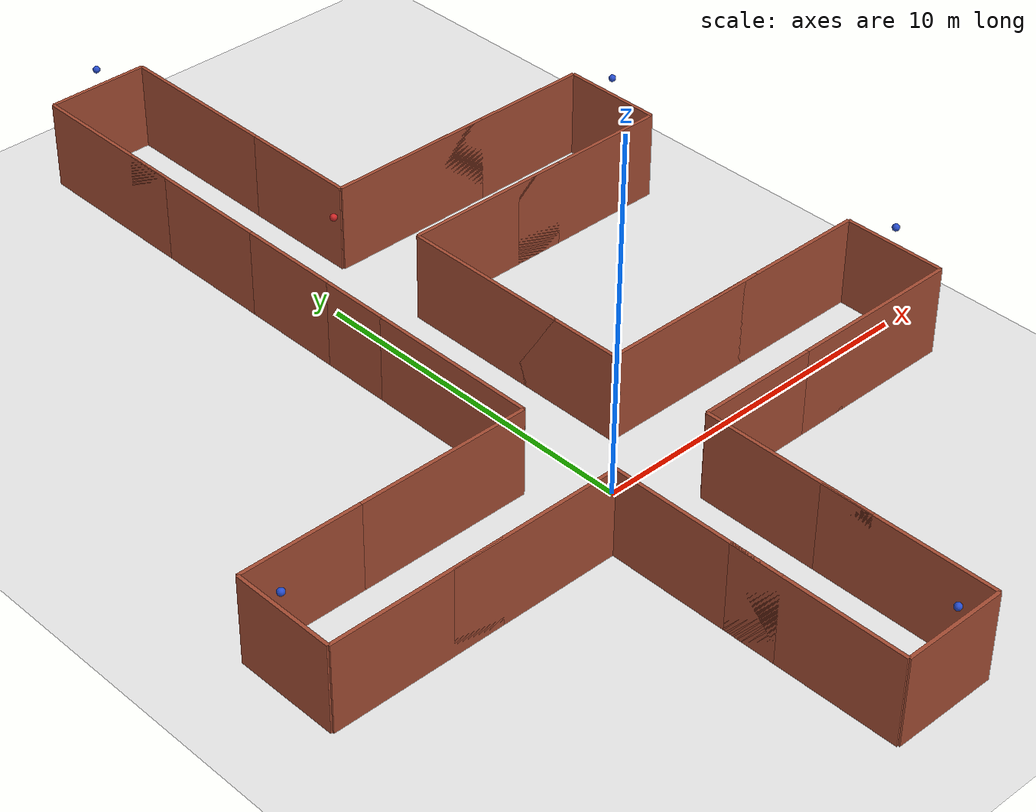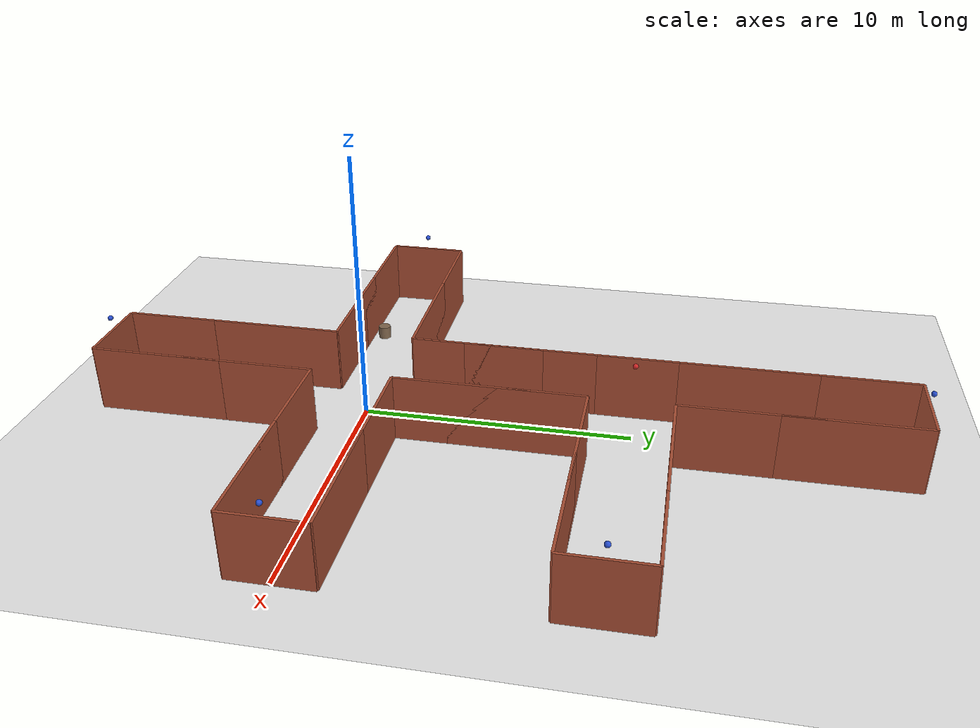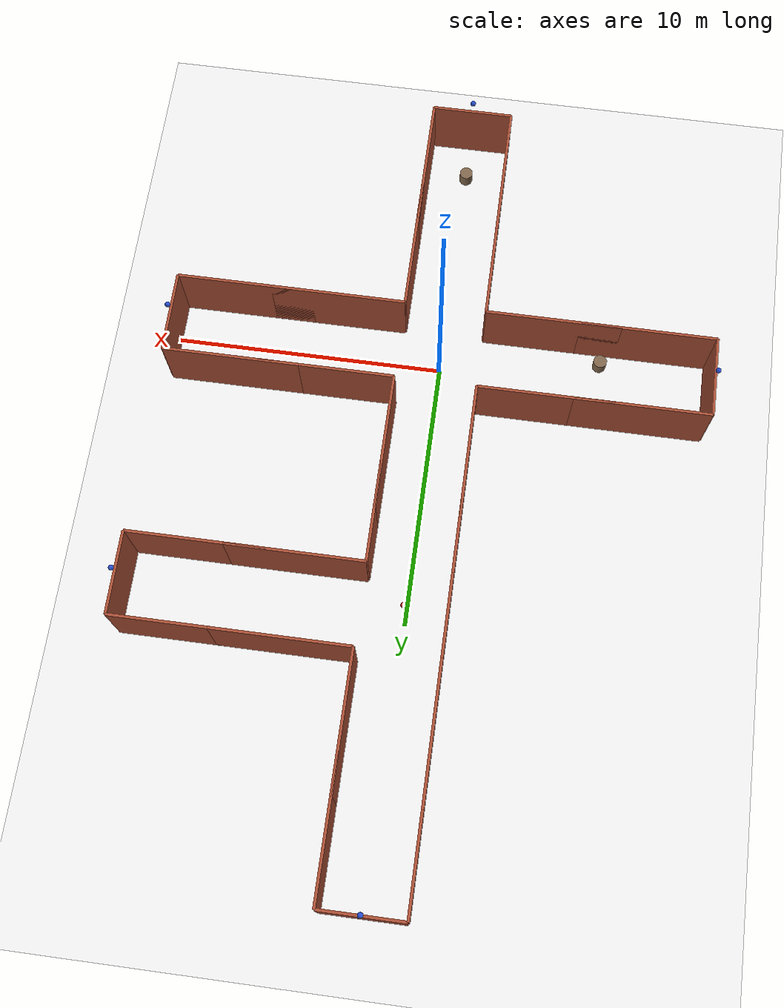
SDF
<?xml version="1.0" encoding="utf-8"?>

<sdf version="1.6">
    <world name="default">
        <plugin name="gazebo_ros_state" filename="libgazebo_ros_state.so"/>

        <!-- Sun -->
        <include>
            <uri>model://sun</uri>
        </include>

        <!-- Ground -->
        <model name="ground">
            <static>true</static>
            <pose>0 0 0 0 0 0</pose>
            <link name="ground_link">
                <collision name="ground_collision">
                    <geometry>
                        <plane>
                            <size>100 100</size>
                        </plane>
                    </geometry>
                </collision>
                <visual name="ground_visual">
                    <geometry>
                        <plane>
                            <size>100 100</size>
                        </plane>
                    </geometry>
                    <material>
                        <script>
                            <uri>file://media/materials/scripts/gazebo.material</uri>
                            <name>Gazebo/White</name>
                        </script>
                    </material>
                </visual>
            </link>
        </model>

        <!-- Top Down Camera View -->
        <gui>
            <camera name="user_camera">
                <pose>0 0 10 0 1.5708 0</pose> <!-- Top-down view -->
                <view_controller>orbit</view_controller>
            </camera>
        </gui>

        <!-- Beacon - I1 -->
        <model name="I1">
            <static>true</static>
            <pose>0 0 3.0 0 0 0</pose>
            <link name="body">
                <!-- Visual appearance of the RF system -->
                <visual name="beacon_visual">
                    <geometry>
                        <sphere>
                            <radius>0.1</radius>
                        </sphere>
                    </geometry>
                    <material>
                        <script>
                            <uri>file://media/materials/scripts/gazebo.material</uri>
                            <name>Gazebo/Red</name>
                        </script>
                    </material>
                </visual>
            </link>
        </model>

        <!-- Wall - I1_north_l -->
        <model name="wall_I1_north_l">
            <static>true</static>
            <pose>-1.5 4.0 1.0 0 0 0</pose>
            <link name="wall_I1_north_l_link">
                <collision name="wall_I1_north_l_collision">
                    <geometry>
                        <box>
                            <size>0.1 5.0 3.0</size>
                        </box>
                    </geometry>
                </collision>
                <visual name="wall_I1_north_l_visual">
                    <geometry>
                        <box>
                            <size>0.1 5.0 3.0</size>
                        </box>
                    </geometry>
                    <material>
                        <script>
                            <uri>file://media/materials/scripts/gazebo.material</uri>
                            <name>Gazebo/Bricks</name>
                        </script>
                    </material>
                </visual>
            </link>
        </model>

        <!-- Wall - I1_north_r -->
        <model name="wall_I1_north_r">
            <static>true</static>
            <pose>1.5 4.0 1.0 0 0 0</pose>
            <link name="wall_I1_north_r_link">
                <collision name="wall_I1_north_r_collision">
                    <geometry>
                        <box>
                            <size>0.1 5.0 3.0</size>
                        </box>
                    </geometry>
                </collision>
                <visual name="wall_I1_north_r_visual">
                    <geometry>
                        <box>
                            <size>0.1 5.0 3.0</size>
                        </box>
                    </geometry>
                    <material>
                        <script>
                            <uri>file://media/materials/scripts/gazebo.material</uri>
                            <name>Gazebo/Bricks</name>
                        </script>
                    </material>
                </visual>
            </link>
        </model>

        <!-- Wall - I1_east_l -->
        <model name="wall_I1_east_l">
            <static>true</static>
            <pose>4.0 -1.5 1.0 0 0 0</pose>
            <link name="wall_I1_east_l_link">
                <collision name="wall_I1_east_l_collision">
                    <geometry>
                        <box>
                            <size>5.0 0.1 3.0</size>
                        </box>
                    </geometry>
                </collision>
                <visual name="wall_I1_east_l_visual">
                    <geometry>
                        <box>
                            <size>5.0 0.1 3.0</size>
                        </box>
                    </geometry>
                    <material>
                        <script>
                            <uri>file://media/materials/scripts/gazebo.material</uri>
                            <name>Gazebo/Bricks</name>
                        </script>
                    </material>
                </visual>
            </link>
        </model>

        <!-- Wall - I1_east_r -->
        <model name="wall_I1_east_r">
            <static>true</static>
            <pose>4.0 1.5 1.0 0 0 0</pose>
            <link name="wall_I1_east_r_link">
                <collision name="wall_I1_east_r_collision">
                    <geometry>
                        <box>
                            <size>5.0 0.1 3.0</size>
                        </box>
                    </geometry>
                </collision>
                <visual name="wall_I1_east_r_visual">
                    <geometry>
                        <box>
                            <size>5.0 0.1 3.0</size>
                        </box>
                    </geometry>
                    <material>
                        <script>
                            <uri>file://media/materials/scripts/gazebo.material</uri>
                            <name>Gazebo/Bricks</name>
                        </script>
                    </material>
                </visual>
            </link>
        </model>

        <!-- Wall - I1_south_l -->
        <model name="wall_I1_south_l">
            <static>true</static>
            <pose>-1.5 -4.0 1.0 0 0 0</pose>
            <link name="wall_I1_south_l_link">
                <collision name="wall_I1_south_l_collision">
                    <geometry>
                        <box>
                            <size>0.1 5.0 3.0</size>
                        </box>
                    </geometry>
                </collision>
                <visual name="wall_I1_south_l_visual">
                    <geometry>
                        <box>
                            <size>0.1 5.0 3.0</size>
                        </box>
                    </geometry>
                    <material>
                        <script>
                            <uri>file://media/materials/scripts/gazebo.material</uri>
                            <name>Gazebo/Bricks</name>
                        </script>
                    </material>
                </visual>
            </link>
        </model>

        <!-- Wall - I1_south_r -->
        <model name="wall_I1_south_r">
            <static>true</static>
            <pose>1.5 -4.0 1.0 0 0 0</pose>
            <link name="wall_I1_south_r_link">
                <collision name="wall_I1_south_r_collision">
                    <geometry>
                        <box>
                            <size>0.1 5.0 3.0</size>
                        </box>
                    </geometry>
                </collision>
                <visual name="wall_I1_south_r_visual">
                    <geometry>
                        <box>
                            <size>0.1 5.0 3.0</size>
                        </box>
                    </geometry>
                    <material>
                        <script>
                            <uri>file://media/materials/scripts/gazebo.material</uri>
                            <name>Gazebo/Bricks</name>
                        </script>
                    </material>
                </visual>
            </link>
        </model>

        <!-- Wall - I1_west_l -->
        <model name="wall_I1_west_l">
            <static>true</static>
            <pose>-4.0 -1.5 1.0 0 0 0</pose>
            <link name="wall_I1_west_l_link">
                <collision name="wall_I1_west_l_collision">
                    <geometry>
                        <box>
                            <size>5.0 0.1 3.0</size>
                        </box>
                    </geometry>
                </collision>
                <visual name="wall_I1_west_l_visual">
                    <geometry>
                        <box>
                            <size>5.0 0.1 3.0</size>
                        </box>
                    </geometry>
                    <material>
                        <script>
                            <uri>file://media/materials/scripts/gazebo.material</uri>
                            <name>Gazebo/Bricks</name>
                        </script>
                    </material>
                </visual>
            </link>
        </model>

        <!-- Wall - I1_west_r -->
        <model name="wall_I1_west_r">
            <static>true</static>
            <pose>-4.0 1.5 1.0 0 0 0</pose>
            <link name="wall_I1_west_r_link">
                <collision name="wall_I1_west_r_collision">
                    <geometry>
                        <box>
                            <size>5.0 0.1 3.0</size>
                        </box>
                    </geometry>
                </collision>
                <visual name="wall_I1_west_r_visual">
                    <geometry>
                        <box>
                            <size>5.0 0.1 3.0</size>
                        </box>
                    </geometry>
                    <material>
                        <script>
                            <uri>file://media/materials/scripts/gazebo.material</uri>
                            <name>Gazebo/Bricks</name>
                        </script>
                    </material>
                </visual>
            </link>
        </model>

        <!-- Beacon - I2 -->
        <model name="I2">
            <static>true</static>
            <pose>0 10 3.0 0 0 0</pose>
            <link name="body">
                <!-- Visual appearance of the RF system -->
                <visual name="beacon_visual">
                    <geometry>
                        <sphere>
                            <radius>0.1</radius>
                        </sphere>
                    </geometry>
                    <material>
                        <script>
                            <uri>file://media/materials/scripts/gazebo.material</uri>
                            <name>Gazebo/Red</name>
                        </script>
                    </material>
                </visual>
            </link>
        </model>

        <!-- Wall - I2_north_l -->
        <model name="wall_I2_north_l">
            <static>true</static>
            <pose>-1.5 14.0 1.0 0 0 0</pose>
            <link name="wall_I2_north_l_link">
                <collision name="wall_I2_north_l_collision">
                    <geometry>
                        <box>
                            <size>0.1 5.0 3.0</size>
                        </box>
                    </geometry>
                </collision>
                <visual name="wall_I2_north_l_visual">
                    <geometry>
                        <box>
                            <size>0.1 5.0 3.0</size>
                        </box>
                    </geometry>
                    <material>
                        <script>
                            <uri>file://media/materials/scripts/gazebo.material</uri>
                            <name>Gazebo/Bricks</name>
                        </script>
                    </material>
                </visual>
            </link>
        </model>

        <!-- Wall - I2_north_r -->
        <model name="wall_I2_north_r">
            <static>true</static>
            <pose>1.5 14.0 1.0 0 0 0</pose>
            <link name="wall_I2_north_r_link">
                <collision name="wall_I2_north_r_collision">
                    <geometry>
                        <box>
                            <size>0.1 5.0 3.0</size>
                        </box>
                    </geometry>
                </collision>
                <visual name="wall_I2_north_r_visual">
                    <geometry>
                        <box>
                            <size>0.1 5.0 3.0</size>
                        </box>
                    </geometry>
                    <material>
                        <script>
                            <uri>file://media/materials/scripts/gazebo.material</uri>
                            <name>Gazebo/Bricks</name>
                        </script>
                    </material>
                </visual>
            </link>
        </model>

        <!-- Wall - I2_east_l -->
        <model name="wall_I2_east_l">
            <static>true</static>
            <pose>4.0 8.5 1.0 0 0 0</pose>
            <link name="wall_I2_east_l_link">
                <collision name="wall_I2_east_l_collision">
                    <geometry>
                        <box>
                            <size>5.0 0.1 3.0</size>
                        </box>
                    </geometry>
                </collision>
                <visual name="wall_I2_east_l_visual">
                    <geometry>
                        <box>
                            <size>5.0 0.1 3.0</size>
                        </box>
                    </geometry>
                    <material>
                        <script>
                            <uri>file://media/materials/scripts/gazebo.material</uri>
                            <name>Gazebo/Bricks</name>
                        </script>
                    </material>
                </visual>
            </link>
        </model>

        <!-- Wall - I2_east_r -->
        <model name="wall_I2_east_r">
            <static>true</static>
            <pose>4.0 11.5 1.0 0 0 0</pose>
            <link name="wall_I2_east_r_link">
                <collision name="wall_I2_east_r_collision">
                    <geometry>
                        <box>
                            <size>5.0 0.1 3.0</size>
                        </box>
                    </geometry>
                </collision>
                <visual name="wall_I2_east_r_visual">
                    <geometry>
                        <box>
                            <size>5.0 0.1 3.0</size>
                        </box>
                    </geometry>
                    <material>
                        <script>
                            <uri>file://media/materials/scripts/gazebo.material</uri>
                            <name>Gazebo/Bricks</name>
                        </script>
                    </material>
                </visual>
            </link>
        </model>

        <!-- Wall - I2_south_l -->
        <model name="wall_I2_south_l">
            <static>true</static>
            <pose>-1.5 6.0 1.0 0 0 0</pose>
            <link name="wall_I2_south_l_link">
                <collision name="wall_I2_south_l_collision">
                    <geometry>
                        <box>
                            <size>0.1 5.0 3.0</size>
                        </box>
                    </geometry>
                </collision>
                <visual name="wall_I2_south_l_visual">
                    <geometry>
                        <box>
                            <size>0.1 5.0 3.0</size>
                        </box>
                    </geometry>
                    <material>
                        <script>
                            <uri>file://media/materials/scripts/gazebo.material</uri>
                            <name>Gazebo/Bricks</name>
                        </script>
                    </material>
                </visual>
            </link>
        </model>

        <!-- Wall - I2_south_r -->
        <model name="wall_I2_south_r">
            <static>true</static>
            <pose>1.5 6.0 1.0 0 0 0</pose>
            <link name="wall_I2_south_r_link">
                <collision name="wall_I2_south_r_collision">
                    <geometry>
                        <box>
                            <size>0.1 5.0 3.0</size>
                        </box>
                    </geometry>
                </collision>
                <visual name="wall_I2_south_r_visual">
                    <geometry>
                        <box>
                            <size>0.1 5.0 3.0</size>
                        </box>
                    </geometry>
                    <material>
                        <script>
                            <uri>file://media/materials/scripts/gazebo.material</uri>
                            <name>Gazebo/Bricks</name>
                        </script>
                    </material>
                </visual>
            </link>
        </model>

        <!-- Wall - I2_west_t -->
        <model name="wall_I2_west_t">
            <static>true</static>
            <pose>-1.5 10 1.0 0 0 0</pose>
            <link name="wall_I2_west_t_link">
                <collision name="wall_I2_west_t_collision">
                    <geometry>
                        <box>
                            <size>0.1 3.0 3.0</size>
                        </box>
                    </geometry>
                </collision>
                <visual name="wall_I2_west_t_visual">
                    <geometry>
                        <box>
                            <size>0.1 3.0 3.0</size>
                        </box>
                    </geometry>
                    <material>
                        <script>
                            <uri>file://media/materials/scripts/gazebo.material</uri>
                            <name>Gazebo/Bricks</name>
                        </script>
                    </material>
                </visual>
            </link>
        </model>

        <!-- Beacon - B1 -->
        <model name="B1">
            <static>true</static>
            <pose>10 0 3.0 0 0 0</pose>
            <link name="body">
                <!-- Visual appearance of the RF system -->
                <visual name="beacon_visual">
                    <geometry>
                        <sphere>
                            <radius>0.1</radius>
                        </sphere>
                    </geometry>
                    <material>
                        <script>
                            <uri>file://media/materials/scripts/gazebo.material</uri>
                            <name>Gazebo/Blue</name>
                        </script>
                    </material>
                </visual>
            </link>
        </model>

        <!-- Wall - B1_west_l -->
        <model name="wall_B1_west_l">
            <static>true</static>
            <pose>7.5 -1.5 1.0 0 0 0</pose>
            <link name="wall_B1_west_l_link">
                <collision name="wall_B1_west_l_collision">
                    <geometry>
                        <box>
                            <size>5.0 0.1 3.0</size>
                        </box>
                    </geometry>
                </collision>
                <visual name="wall_B1_west_l_visual">
                    <geometry>
                        <box>
                            <size>5.0 0.1 3.0</size>
                        </box>
                    </geometry>
                    <material>
                        <script>
                            <uri>file://media/materials/scripts/gazebo.material</uri>
                            <name>Gazebo/Bricks</name>
                        </script>
                    </material>
                </visual>
            </link>
        </model>

        <!-- Wall - B1_west_r -->
        <model name="wall_B1_west_r">
            <static>true</static>
            <pose>7.5 1.5 1.0 0 0 0</pose>
            <link name="wall_B1_west_r_link">
                <collision name="wall_B1_west_r_collision">
                    <geometry>
                        <box>
                            <size>5.0 0.1 3.0</size>
                        </box>
                    </geometry>
                </collision>
                <visual name="wall_B1_west_r_visual">
                    <geometry>
                        <box>
                            <size>5.0 0.1 3.0</size>
                        </box>
                    </geometry>
                    <material>
                        <script>
                            <uri>file://media/materials/scripts/gazebo.material</uri>
                            <name>Gazebo/Bricks</name>
                        </script>
                    </material>
                </visual>
            </link>
        </model>

        <!-- Wall - B1_east_t -->
        <model name="wall_B1_east_t">
            <static>true</static>
            <pose>10 0 1.0 0 0 0</pose>
            <link name="wall_B1_east_t_link">
                <collision name="wall_B1_east_t_collision">
                    <geometry>
                        <box>
                            <size>0.1 3.0 3.0</size>
                        </box>
                    </geometry>
                </collision>
                <visual name="wall_B1_east_t_visual">
                    <geometry>
                        <box>
                            <size>0.1 3.0 3.0</size>
                        </box>
                    </geometry>
                    <material>
                        <script>
                            <uri>file://media/materials/scripts/gazebo.material</uri>
                            <name>Gazebo/Bricks</name>
                        </script>
                    </material>
                </visual>
            </link>
        </model>

        <!-- Beacon - B2 -->
        <model name="B2">
            <static>true</static>
            <pose>0 -10 3.0 0 0 0</pose>
            <link name="body">
                <!-- Visual appearance of the RF system -->
                <visual name="beacon_visual">
                    <geometry>
                        <sphere>
                            <radius>0.1</radius>
                        </sphere>
                    </geometry>
                    <material>
                        <script>
                            <uri>file://media/materials/scripts/gazebo.material</uri>
                            <name>Gazebo/Blue</name>
                        </script>
                    </material>
                </visual>
            </link>
        </model>

        <!-- Wall - B2_north_l -->
        <model name="wall_B2_north_l">
            <static>true</static>
            <pose>-1.5 -7.5 1.0 0 0 0</pose>
            <link name="wall_B2_north_l_link">
                <collision name="wall_B2_north_l_collision">
                    <geometry>
                        <box>
                            <size>0.1 5.0 3.0</size>
                        </box>
                    </geometry>
                </collision>
                <visual name="wall_B2_north_l_visual">
                    <geometry>
                        <box>
                            <size>0.1 5.0 3.0</size>
                        </box>
                    </geometry>
                    <material>
                        <script>
                            <uri>file://media/materials/scripts/gazebo.material</uri>
                            <name>Gazebo/Bricks</name>
                        </script>
                    </material>
                </visual>
            </link>
        </model>

        <!-- Wall - B2_north_r -->
        <model name="wall_B2_north_r">
            <static>true</static>
            <pose>1.5 -7.5 1.0 0 0 0</pose>
            <link name="wall_B2_north_r_link">
                <collision name="wall_B2_north_r_collision">
                    <geometry>
                        <box>
                            <size>0.1 5.0 3.0</size>
                        </box>
                    </geometry>
                </collision>
                <visual name="wall_B2_north_r_visual">
                    <geometry>
                        <box>
                            <size>0.1 5.0 3.0</size>
                        </box>
                    </geometry>
                    <material>
                        <script>
                            <uri>file://media/materials/scripts/gazebo.material</uri>
                            <name>Gazebo/Bricks</name>
                        </script>
                    </material>
                </visual>
            </link>
        </model>

        <!-- Wall - B2_south_t -->
        <model name="wall_B2_south_t">
            <static>true</static>
            <pose>0 -10 1.0 0 0 0</pose>
            <link name="wall_B2_south_t_link">
                <collision name="wall_B2_south_t_collision">
                    <geometry>
                        <box>
                            <size>3.0 0.1 3.0</size>
                        </box>
                    </geometry>
                </collision>
                <visual name="wall_B2_south_t_visual">
                    <geometry>
                        <box>
                            <size>3.0 0.1 3.0</size>
                        </box>
                    </geometry>
                    <material>
                        <script>
                            <uri>file://media/materials/scripts/gazebo.material</uri>
                            <name>Gazebo/Bricks</name>
                        </script>
                    </material>
                </visual>
            </link>
        </model>

        <!-- Beacon - B3 -->
        <model name="B3">
            <static>true</static>
            <pose>-10 0 3.0 0 0 0</pose>
            <link name="body">
                <!-- Visual appearance of the RF system -->
                <visual name="beacon_visual">
                    <geometry>
                        <sphere>
                            <radius>0.1</radius>
                        </sphere>
                    </geometry>
                    <material>
                        <script>
                            <uri>file://media/materials/scripts/gazebo.material</uri>
                            <name>Gazebo/Blue</name>
                        </script>
                    </material>
                </visual>
            </link>
        </model>

        <!-- Wall - B3_east_l -->
        <model name="wall_B3_east_l">
            <static>true</static>
            <pose>-7.5 -1.5 1.0 0 0 0</pose>
            <link name="wall_B3_east_l_link">
                <collision name="wall_B3_east_l_collision">
                    <geometry>
                        <box>
                            <size>5.0 0.1 3.0</size>
                        </box>
                    </geometry>
                </collision>
                <visual name="wall_B3_east_l_visual">
                    <geometry>
                        <box>
                            <size>5.0 0.1 3.0</size>
                        </box>
                    </geometry>
                    <material>
                        <script>
                            <uri>file://media/materials/scripts/gazebo.material</uri>
                            <name>Gazebo/Bricks</name>
                        </script>
                    </material>
                </visual>
            </link>
        </model>

        <!-- Wall - B3_east_r -->
        <model name="wall_B3_east_r">
            <static>true</static>
            <pose>-7.5 1.5 1.0 0 0 0</pose>
            <link name="wall_B3_east_r_link">
                <collision name="wall_B3_east_r_collision">
                    <geometry>
                        <box>
                            <size>5.0 0.1 3.0</size>
                        </box>
                    </geometry>
                </collision>
                <visual name="wall_B3_east_r_visual">
                    <geometry>
                        <box>
                            <size>5.0 0.1 3.0</size>
                        </box>
                    </geometry>
                    <material>
                        <script>
                            <uri>file://media/materials/scripts/gazebo.material</uri>
                            <name>Gazebo/Bricks</name>
                        </script>
                    </material>
                </visual>
            </link>
        </model>

        <!-- Wall - B3_west_t -->
        <model name="wall_B3_west_t">
            <static>true</static>
            <pose>-10 0 1.0 0 0 0</pose>
            <link name="wall_B3_west_t_link">
                <collision name="wall_B3_west_t_collision">
                    <geometry>
                        <box>
                            <size>0.1 3.0 3.0</size>
                        </box>
                    </geometry>
                </collision>
                <visual name="wall_B3_west_t_visual">
                    <geometry>
                        <box>
                            <size>0.1 3.0 3.0</size>
                        </box>
                    </geometry>
                    <material>
                        <script>
                            <uri>file://media/materials/scripts/gazebo.material</uri>
                            <name>Gazebo/Bricks</name>
                        </script>
                    </material>
                </visual>
            </link>
        </model>

        <!-- Beacon - B4 -->
        <model name="B4">
            <static>true</static>
            <pose>0 20 3.0 0 0 0</pose>
            <link name="body">
                <!-- Visual appearance of the RF system -->
                <visual name="beacon_visual">
                    <geometry>
                        <sphere>
                            <radius>0.1</radius>
                        </sphere>
                    </geometry>
                    <material>
                        <script>
                            <uri>file://media/materials/scripts/gazebo.material</uri>
                            <name>Gazebo/Blue</name>
                        </script>
                    </material>
                </visual>
            </link>
        </model>

        <!-- Wall - B4_south_l -->
        <model name="wall_B4_south_l">
            <static>true</static>
            <pose>-1.5 17.5 1.0 0 0 0</pose>
            <link name="wall_B4_south_l_link">
                <collision name="wall_B4_south_l_collision">
                    <geometry>
                        <box>
                            <size>0.1 5.0 3.0</size>
                        </box>
                    </geometry>
                </collision>
                <visual name="wall_B4_south_l_visual">
                    <geometry>
                        <box>
                            <size>0.1 5.0 3.0</size>
                        </box>
                    </geometry>
                    <material>
                        <script>
                            <uri>file://media/materials/scripts/gazebo.material</uri>
                            <name>Gazebo/Bricks</name>
                        </script>
                    </material>
                </visual>
            </link>
        </model>

        <!-- Wall - B4_south_r -->
        <model name="wall_B4_south_r">
            <static>true</static>
            <pose>1.5 17.5 1.0 0 0 0</pose>
            <link name="wall_B4_south_r_link">
                <collision name="wall_B4_south_r_collision">
                    <geometry>
                        <box>
                            <size>0.1 5.0 3.0</size>
                        </box>
                    </geometry>
                </collision>
                <visual name="wall_B4_south_r_visual">
                    <geometry>
                        <box>
                            <size>0.1 5.0 3.0</size>
                        </box>
                    </geometry>
                    <material>
                        <script>
                            <uri>file://media/materials/scripts/gazebo.material</uri>
                            <name>Gazebo/Bricks</name>
                        </script>
                    </material>
                </visual>
            </link>
        </model>

        <!-- Wall - B4_north_t -->
        <model name="wall_B4_north_t">
            <static>true</static>
            <pose>0 20 1.0 0 0 0</pose>
            <link name="wall_B4_north_t_link">
                <collision name="wall_B4_north_t_collision">
                    <geometry>
                        <box>
                            <size>3.0 0.1 3.0</size>
                        </box>
                    </geometry>
                </collision>
                <visual name="wall_B4_north_t_visual">
                    <geometry>
                        <box>
                            <size>3.0 0.1 3.0</size>
                        </box>
                    </geometry>
                    <material>
                        <script>
                            <uri>file://media/materials/scripts/gazebo.material</uri>
                            <name>Gazebo/Bricks</name>
                        </script>
                    </material>
                </visual>
            </link>
        </model>

        <!-- Beacon - B5 -->
        <model name="B5">
            <static>true</static>
            <pose>10 10 3.0 0 0 0</pose>
            <link name="body">
                <!-- Visual appearance of the RF system -->
                <visual name="beacon_visual">
                    <geometry>
                        <sphere>
                            <radius>0.1</radius>
                        </sphere>
                    </geometry>
                    <material>
                        <script>
                            <uri>file://media/materials/scripts/gazebo.material</uri>
                            <name>Gazebo/Blue</name>
                        </script>
                    </material>
                </visual>
            </link>
        </model>

        <!-- Wall - B5_west_l -->
        <model name="wall_B5_west_l">
            <static>true</static>
            <pose>7.5 8.5 1.0 0 0 0</pose>
            <link name="wall_B5_west_l_link">
                <collision name="wall_B5_west_l_collision">
                    <geometry>
                        <box>
                            <size>5.0 0.1 3.0</size>
                        </box>
                    </geometry>
                </collision>
                <visual name="wall_B5_west_l_visual">
                    <geometry>
                        <box>
                            <size>5.0 0.1 3.0</size>
                        </box>
                    </geometry>
                    <material>
                        <script>
                            <uri>file://media/materials/scripts/gazebo.material</uri>
                            <name>Gazebo/Bricks</name>
                        </script>
                    </material>
                </visual>
            </link>
        </model>

        <!-- Wall - B5_west_r -->
        <model name="wall_B5_west_r">
            <static>true</static>
            <pose>7.5 11.5 1.0 0 0 0</pose>
            <link name="wall_B5_west_r_link">
                <collision name="wall_B5_west_r_collision">
                    <geometry>
                        <box>
                            <size>5.0 0.1 3.0</size>
                        </box>
                    </geometry>
                </collision>
                <visual name="wall_B5_west_r_visual">
                    <geometry>
                        <box>
                            <size>5.0 0.1 3.0</size>
                        </box>
                    </geometry>
                    <material>
                        <script>
                            <uri>file://media/materials/scripts/gazebo.material</uri>
                            <name>Gazebo/Bricks</name>
                        </script>
                    </material>
                </visual>
            </link>
        </model>

        <!-- Wall - B5_east_t -->
        <model name="wall_B5_east_t">
            <static>true</static>
            <pose>10 10 1.0 0 0 0</pose>
            <link name="wall_B5_east_t_link">
                <collision name="wall_B5_east_t_collision">
                    <geometry>
                        <box>
                            <size>0.1 3.0 3.0</size>
                        </box>
                    </geometry>
                </collision>
                <visual name="wall_B5_east_t_visual">
                    <geometry>
                        <box>
                            <size>0.1 3.0 3.0</size>
                        </box>
                    </geometry>
                    <material>
                        <script>
                            <uri>file://media/materials/scripts/gazebo.material</uri>
                            <name>Gazebo/Bricks</name>
                        </script>
                    </material>
                </visual>
            </link>
        </model>

        <!-- Obstacle - 1 -->
        <model name="Obstacle - 1">
            <static>true</static>
            <link name="obstacle_1_link">
                <pose>0 -8.5 0.25 0 0 0</pose>

                <visual name="rock_visual">
                    <geometry>
                        <cylinder>
                            <radius>0.25</radius>
                            <length>0.5</length>
                        </cylinder>
                    </geometry>
                    <material>
                        <ambient>0.3 0.25 0.2 1</ambient>
                        <diffuse>0.5 0.4 0.3 1</diffuse>
                    </material>
                </visual>

                <collision name="obstacle_1_collision">
                    <geometry>
                        <cylinder>
                            <radius>0.25</radius>
                            <length>0.5</length>
                        </cylinder>
                    </geometry>
                </collision>
            </link>
        </model>

        <!-- Obstacle - 2 -->
        <model name="Obstacle - 2">
            <static>true</static>
            <link name="obstacle_2_link">
                <pose>-6 -1 0.25 0 0 0</pose>

                <visual name="rock_visual">
                    <geometry>
                        <cylinder>
                            <radius>0.25</radius>
                            <length>0.5</length>
                        </cylinder>
                    </geometry>
                    <material>
                        <ambient>0.3 0.25 0.2 1</ambient>
                        <diffuse>0.5 0.4 0.3 1</diffuse>
                    </material>
                </visual>

                <collision name="obstacle_2_collision">
                    <geometry>
                        <cylinder>
                            <radius>0.25</radius>
                            <length>0.5</length>
                        </cylinder>
                    </geometry>
                </collision>
            </link>
        </model>

    </world>
</sdf>
